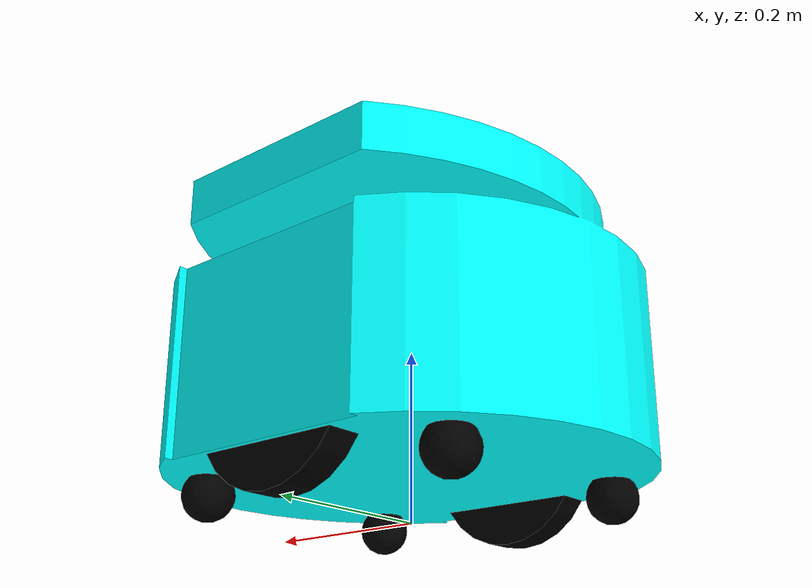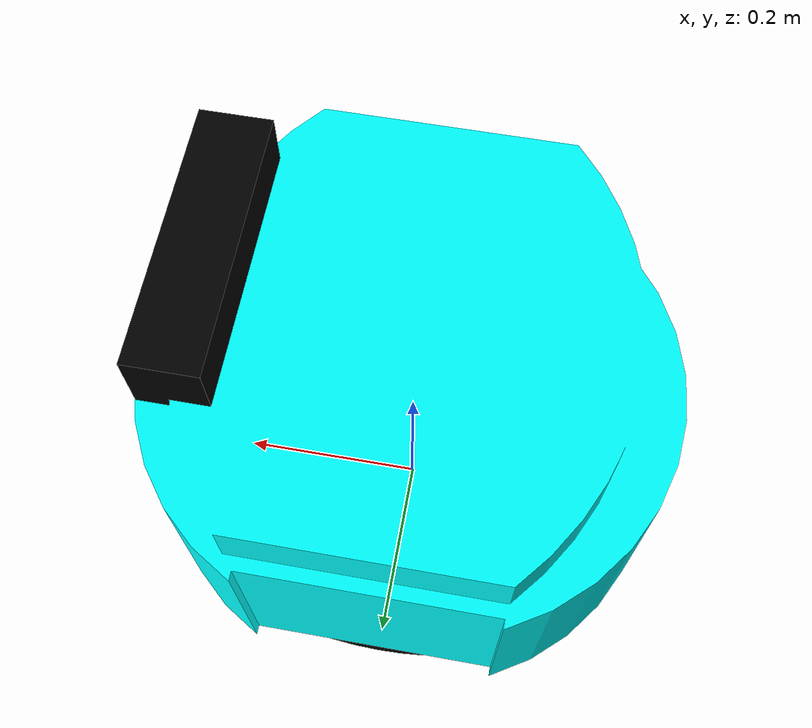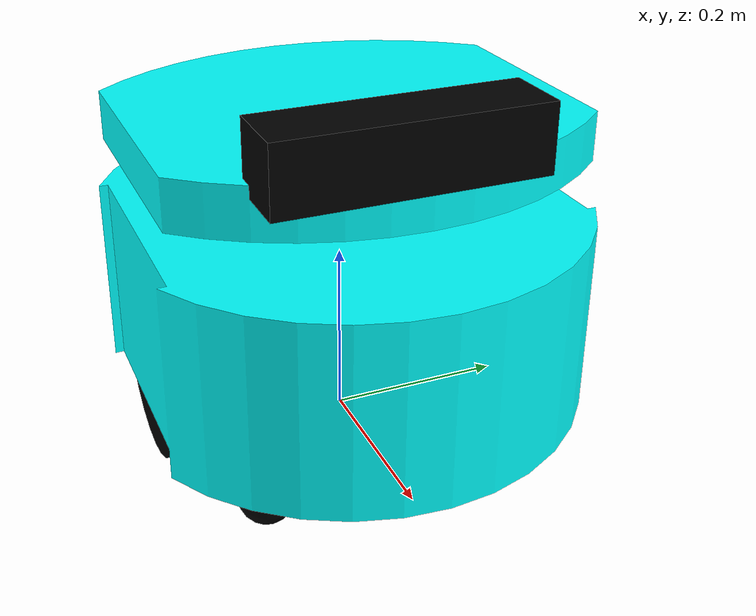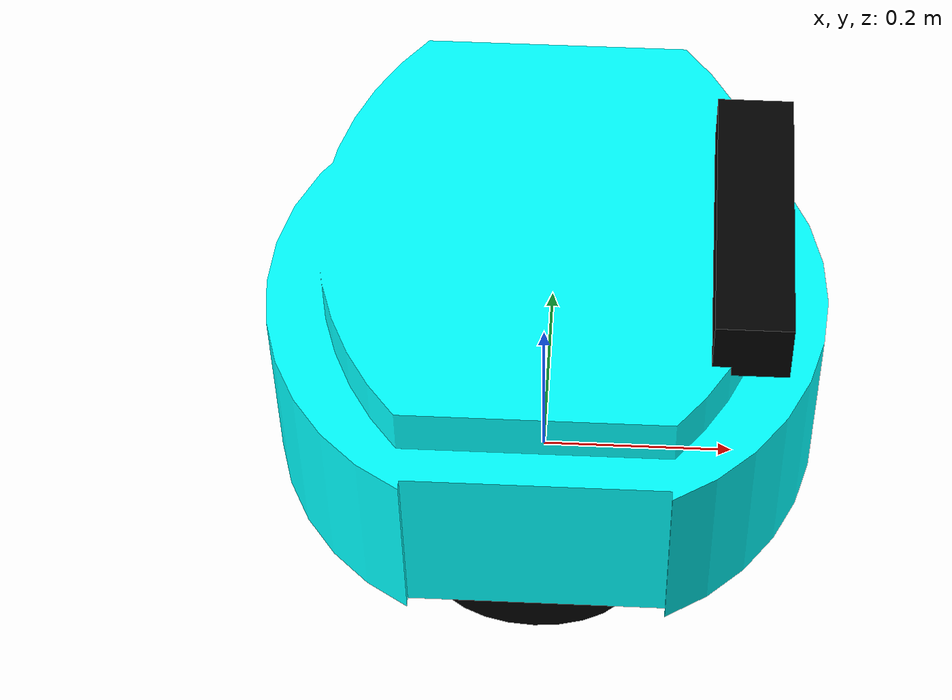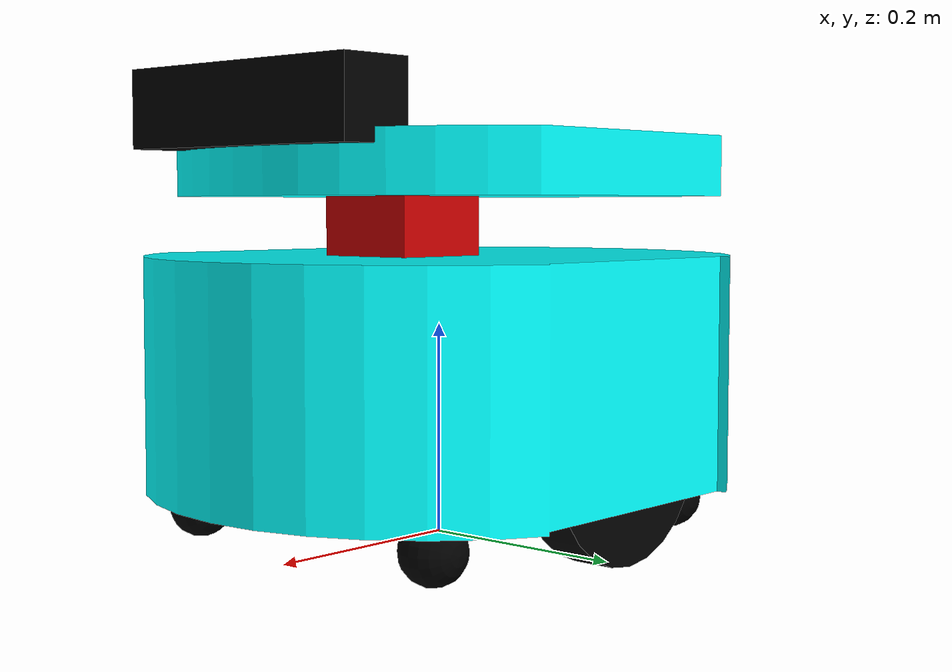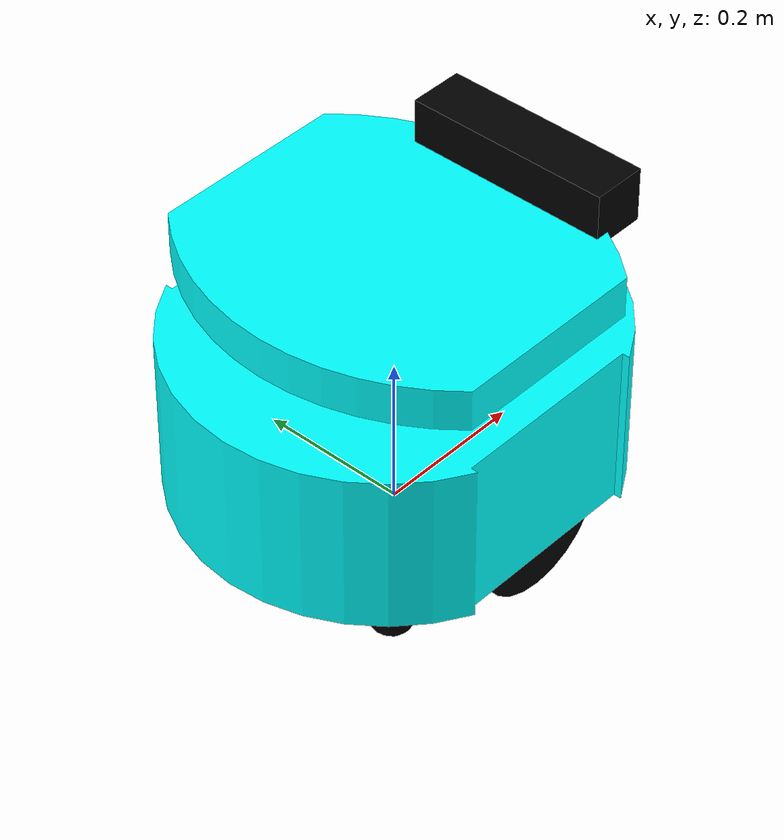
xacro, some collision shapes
<?xml version="1.0"?>
<robot name="awc" xmlns:xacro="http://www.ros.org/wiki/xacro">

<xacro:property name="lenght_base_link" value="0.72" />
<xacro:property name="width_base_link" value="0.47" />
<xacro:property name="height_base_link" value="0.40" />

<xacro:property name="width_seat" value="0.46" />
<xacro:property name="length_seat" value="0.43" />
<xacro:property name="height_seat" value="0.1" />

<xacro:property name="width_feed_support" value="0.25" />
<xacro:property name="length_feed_support" value="0.42" />
<xacro:property name="height_feed_support" value="0.05" />

<xacro:property name="width_wheel" value="0.04" />
<xacro:property name="radius_wheel" value="0.1" />

<xacro:property name="width_back_wheel" value="0.05" />
<xacro:property name="radius_back_wheel" value="0.03" />

<xacro:property name="radius_front_wheel" value="0.03" />

<xacro:property name="width_handle" value="0.31" />
<xacro:property name="length_handle" value="0.1" />
<xacro:property name="height_handle" value="0.04" />

<xacro:property name="width_rest" value="0.43" />
<xacro:property name="length_rest" value="0.37" />
<xacro:property name="height_rest" value="0.1" />

<xacro:property name="width_head" value="0.16" />
<xacro:property name="length_head" value="0.20" />
<xacro:property name="height_head" value="0.05" />

<xacro:property name="wheel_front_mass" value="5"/>

<xacro:property name="chassisMass" value="50"/>

<xacro:property name="PI" value="3.1415926535897931"/>

<xacro:property name="chassisHeight" value="0.1"/>
<xacro:property name="chassisLength" value="0.4"/>
<xacro:property name="chassisWidth" value="0.2"/>

<xacro:property name="casterRadius" value="0.05"/>
<xacro:property name="casterMass" value="5"/>

<xacro:property name="wheelWidth" value="0.05"/>
<xacro:property name="wheelRadius" value="0.1"/>
<xacro:property name="wheelPos" value="0.2"/>
<xacro:property name="wheelMass" value="5"/>

<xacro:property name="cameraSize" value="0.05"/>
<xacro:property name="cameraMass" value="0.1"/>

<xacro:include filename="$(find patbotsd_description)/urdf/patbot.gazebo" />
<xacro:include filename="$(find patbotsd_description)/urdf/materials.xacro" />
<xacro:include filename="$(find patbotsd_description)/urdf/macros.xacro" />

<!--xacro:include filename="$(find awc_description)/urdf/sensors/kinect.urdf.xacro"/-->
<xacro:include filename="$(find patbotsd_description)/urdf/sensors/asus_xtion_pro.urdf.xacro"/>

<!--Base_link -->
<link name="footprint">
    <visual>
        <origin xyz="0 0 0.05" rpy="0 0 0"/>
        <geometry>
            <mesh filename="package://patbotsd_description/meshes/patbot_structure.dae"/>
        </geometry>
        <material name="cyan"/>
    </visual>
    <collision>
        <origin xyz="0 0 0.05" rpy="0 0 0"/>
        <geometry>
             <mesh filename="package://patbotsd_description/meshes/patbot_structure.dae"/>
        </geometry>
    </collision>
    <inertial>
       <origin xyz="0 0 0.05" rpy="0 0 0"/>
       <mass value="${chassisMass}"/>
	   <box_inertia m="${chassisMass}" x="${chassisLength}" y="${chassisWidth}" z="${chassisHeight}"/>
    </inertial>
</link>

<link name="base_link" />

<joint name="base_joint" type="fixed">
  <parent link="base_link"/>
  <child link="footprint"/>
  <origin rpy="0 0 0" xyz="-0 0.0 0.0"/>
</joint>

<!-- front wheels -->
<wheel lr="right"  o_y="0.205"/>
<wheel lr="left"  o_y="-0.205"/>

<!-- kinect/asus -->
<!--sensor_kinect parent="seat"/-->
<sensor_asus_xtion_pro parent="footprint"/>

<!--right back wheel -->

  <link name="right_back_wheel">
    <visual>
      <origin rpy="0 0 0" xyz="0 0 0"/>
      <geometry>
        <sphere radius="${radius_back_wheel}"/>
      </geometry>
      <material name="black" />
    </visual>
    <collision>
        <origin rpy="0 0 0" xyz="0 0 0"/>
        <geometry>
             <sphere radius="${radius_back_wheel}"/>
        </geometry>
    </collision>
    <inertial>
       <origin rpy="0 0 0" xyz="0 0 0"/>
       <mass value="1"/>
       <inertia
	   ixx="1.0" ixy="0.0" ixz="0.0"
	   iyy="1.0" iyz="0.0"
	   izz="1.0"/>
    </inertial>
  </link>

<joint name="base_to_right_back_wheel" type="fixed">
    <parent link="footprint"/>
    <child link="right_back_wheel"/>
    <axis xyz="1 1 1"/>
    <origin rpy="1.57075 0 0" xyz="-0.17 -0.15 0.03"/>
  </joint>

<!--right front wheel -->

  <link name="right_front_wheel">
    <visual>
      <origin rpy="0 0 0" xyz="0 0 0"/>
      <geometry>
        <sphere radius="${radius_front_wheel}"/>
      </geometry>
      <material name="black" />
    </visual>
    <collision>
        <origin rpy="0 0 0" xyz="0 0 0"/>
        <geometry>
             <sphere radius="${radius_front_wheel}"/>
        </geometry>
    </collision>
    <inertial>
       <origin rpy="0 0 0" xyz="0 0 0"/>
       <mass value="1"/>
       <inertia
	   ixx="1.0" ixy="0.0" ixz="0.0"
	   iyy="1.0" iyz="0.0"
	   izz="1.0"/>
    </inertial>
  </link>

<joint name="base_to_right_front_wheel" type="fixed">
    <parent link="footprint"/>
    <child link="right_front_wheel"/>
    <axis xyz="1 1 1"/>
    <origin rpy="1.57075 0 0" xyz="0.17 -0.15 0.03"/>
  </joint>

<!--left back wheel -->

  <link name="left_back_wheel">
    <visual>
      <origin rpy="0 0 0" xyz="0 0 0"/>
      <geometry>
        <sphere radius="${radius_back_wheel}"/>
      </geometry>
      <material name="black" />
    </visual>
    <collision>
        <origin rpy="0 0 0" xyz="0 0 0"/>
        <geometry>
             <sphere radius="${radius_back_wheel}"/>
        </geometry>
    </collision>
    <inertial>
       <origin rpy="0 0 0" xyz="0 0 0"/>
       <mass value="1"/>
       <inertia
	   ixx="1.0" ixy="0.0" ixz="0.0"
	   iyy="1.0" iyz="0.0"
	   izz="1.0"/>
    </inertial>
  </link>

  <joint name="base_to_left_back_wheel" type="fixed">
    <parent link="footprint"/>
    <child link="left_back_wheel"/>
    <axis xyz="1 1 1"/>
    <origin rpy="1.57075 0 0" xyz="-0.17 0.15 0.03"/>
  </joint>

<!--left front wheel -->

  <link name="left_front_wheel">
    <visual>
      <origin rpy="0 0 0" xyz="0 0 0"/>
      <geometry>
        <sphere radius="${radius_front_wheel}"/>
      </geometry>
      <material name="black" />
    </visual>
    <collision>
        <origin rpy="0 0 0" xyz="0 0 0"/>
        <geometry>
             <sphere radius="${radius_front_wheel}"/>
        </geometry>
    </collision>
    <inertial>
       <origin rpy="0 0 0" xyz="0 0 0"/>
       <mass value="1"/>
       <inertia
	   ixx="1.0" ixy="0.0" ixz="0.0"
	   iyy="1.0" iyz="0.0"
	   izz="1.0"/>
    </inertial>
  </link>

<joint name="base_to_left_front_wheel" type="fixed">
    <parent link="footprint"/>
    <child link="left_front_wheel"/>
    <axis xyz="1 1 1"/>
    <origin rpy="1.57075 0 0" xyz="0.17 0.15 0.03"/>
  </joint>

<!-- Hokuyo Laser -->
  <link name="laser">
    <visual>
      <origin xyz="0 0 0" rpy="0 0 0"/>
      <geometry>
        <mesh filename="package://patbotsd_description/meshes/hokuyo.dae"/>
      </geometry>
    <material name="red" />
    </visual>
    <collision>
      <origin xyz="0 0 0" rpy="0 0 0"/>
      <geometry>
    <box size="0.1 0.1 0.1"/>
      </geometry>
    </collision>
    <inertial>
      <mass value="1e-5" />
      <origin xyz="0 0 0" rpy="0 0 0"/>
      <inertia ixx="1e-6" ixy="0" ixz="0" iyy="1e-6" iyz="0" izz="1e-6" />
    </inertial>
  </link>

<joint name="hokuyo_joint" type="fixed">
    <axis xyz="0 1 0" />
    <origin xyz="0.05 0 0.30" rpy="3.1416 0 0"/>
    <parent link="footprint"/>
    <child link="laser"/>
  </joint>

</robot>

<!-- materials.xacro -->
<robot>

  <material name="black">
    <color rgba="0.0 0.0 0.0 1.0"/>
  </material>

  <material name="blue">
    <color rgba="0.0 0.0 0.8 1.0"/>
  </material>

  <material name="green">
    <color rgba="0.0 0.8 0.0 1.0"/>
  </material>

  <material name="grey">
    <color rgba="0.2 0.2 0.2 1.0"/>
  </material>

  <material name="cyan">
    <color rgba="0 1.0 1.0 1.0"/>
  </material>

  <material name="orange">
    <color rgba="${255/255} ${108/255} ${10/255} 1.0"/>
  </material>

  <material name="brown">
    <color rgba="${222/255} ${207/255} ${195/255} 1.0"/>
  </material>

  <material name="red">
    <color rgba="0.8 0.0 0.0 1.0"/>
  </material>

  <material name="white">
    <color rgba="1.0 1.0 1.0 1.0"/>
  </material>

</robot>

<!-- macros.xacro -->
<robot>
<macro name="cylinder_inertia" params="m r h">
  <inertia  ixx="${m*(3*r*r+h*h)/12}" ixy = "0" ixz = "0"
    iyy="${m*(3*r*r+h*h)/12}" iyz = "0"
    izz="${m*r*r/2}"
  />
</macro>

<macro name="box_inertia" params="m x y z">
  <inertia  ixx="${m*(y*y+z*z)/12}" ixy = "0" ixz = "0"
    iyy="${m*(x*x+z*z)/12}" iyz = "0"
    izz="${m*(x*x+z*z)/12}"
  />
</macro>

<macro name="sphere_inertia" params="m r">
  <inertia  ixx="${2*m*r*r/5}" ixy = "0" ixz = "0"
    iyy="${2*m*r*r/5}" iyz = "0"
    izz="${2*m*r*r/5}"
  />
</macro>

<macro name="wheel" params="lr o_y">

<link name="${lr}_wheel">
  <collision>
    <origin xyz="0 0 0" rpy="0 ${PI/2} ${PI/2}" />
    <geometry>
      <cylinder length="${width_wheel}" radius="${radius_wheel}"/>
    </geometry>
  </collision>

  <visual>
    <origin xyz="0 0 0" rpy="0 ${PI/2} ${PI/2}" />
    <geometry>
      <cylinder length="${width_wheel}" radius="${radius_wheel}"/>
    </geometry>
    <material name="black"/>
  </visual>

  <inertial>
    <origin xyz="0 0 0" rpy="0 ${PI/2} ${PI/2}" />
    <mass value="${wheelMass}"/>
    <cylinder_inertia m="${wheelMass}" r="${wheelRadius}" h="${wheelWidth}"/>
  </inertial>
</link>

<gazebo reference="${lr}_wheel">
  <mu1 value="1.0"/>
  <mu2 value="1.0"/>
  <kp  value="10000000.0" />
  <kd  value="1.0" />
  <fdir1 value="1 0 0"/>
  <material>Gazebo/Black</material>
</gazebo>

<joint name="${lr}_wheel_hinge" type="continuous">
  <parent link="footprint"/>
  <child link="${lr}_wheel"/>
  <origin rpy="0 1.57075 0" xyz="0 ${o_y} 0.1" />
  <axis xyz="0 1 0" rpy="0 0 0" />
  <limit effort="100" velocity="100"/>
  <joint_properties damping="0.0" friction="0.0"/>
</joint>

<transmission name="${lr}_trans">
    <type>transmission_interface/SimpleTransmission</type>
    <joint name="${lr}_wheel_hinge">
      <hardwareInterface>EffortJointInterface</hardwareInterface>
    </joint>
    <actuator name="${lr}Motor">
      <hardwareInterface>EffortJointInterface</hardwareInterface>
      <mechanicalReduction>10</mechanicalReduction>
    </actuator>
  </transmission>

</macro>

</robot>

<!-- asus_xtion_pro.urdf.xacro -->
<robot name="sensor_asus_xtion_pro" xmlns:xacro="http://ros.org/wiki/xacro">
  <!--xacro:include filename="$(find turtlebot_description)/urdf/turtlebot_gazebo.urdf.xacro"/-->
  <!--xacro:include filename="$(find turtlebot_description)/urdf/turtlebot_properties.urdf.xacro"/-->

<xacro:include filename="$(find patbotsd_description)/urdf/asus_kinect__gazebo.urdf.xacro"/>
<xacro:include filename="$(find patbotsd_description)/urdf/asus_kinect_properties.urdf.xacro"/>

  <!-- Xacro properties -->
  <xacro:property name="M_SCALE" value="0.001"/>
  <xacro:property name="asus_xtion_pro_depth_rel_rgb_py" value="0.0270" />
  <xacro:property name="asus_xtion_pro_cam_rel_rgb_py"   value="-0.0220" />

  <!-- Parameterised in part by the values in turtlebot_properties.urdf.xacro -->
  <xacro:macro name="sensor_asus_xtion_pro" params="parent">

    <joint name="camera_rgb_joint" type="fixed">
      <origin xyz="${cam_px} ${cam_py} ${cam_pz}"
              rpy="${cam_or} ${cam_op} ${cam_oy}"/>
      <parent link="${parent}"/>
      <child link="camera_rgb_frame" />
    </joint>

    <link name="camera_rgb_frame">
      <inertial>
        <mass value="0.001" />
        <origin xyz="0 0 0" />
        <inertia ixx="0.0001" ixy="0.0" ixz="0.0"
          iyy="0.0001" iyz="0.0"
          izz="0.0001" />
      </inertial>
    </link>

    <joint name="camera_rgb_optical_joint" type="fixed">
      <origin xyz="0 0 0" rpy="${-PI/2} 0 ${-PI/2}" />
      <parent link="camera_rgb_frame" />
      <child link="camera_rgb_optical_frame" />
    </joint>

    <link name="camera_rgb_optical_frame">
      <inertial>
        <mass value="0.001" />
        <origin xyz="0 0 0" />
        <inertia ixx="0.0001" ixy="0.0" ixz="0.0"
          iyy="0.0001" iyz="0.0"
          izz="0.0001" />
      </inertial>
    </link>

    <joint name="camera_joint" type="fixed">
      <origin xyz="0 ${asus_xtion_pro_cam_rel_rgb_py} 0"
              rpy="0 0 0"/>
      <parent link="camera_rgb_frame"/>
      <child link="camera_link"/>
    </joint>

    <link name="camera_link">
      <visual>
        <origin xyz="0.01 0 0" rpy="${-PI/2} -${PI} ${-PI/2}"/>
        <geometry>
          <mesh filename="package://turtlebot_description/meshes/sensors/asus_xtion_pro_live.dae" scale="${M_SCALE} ${M_SCALE} ${M_SCALE}"/>
        </geometry>
        <material name="black" />
      </visual>
      <collision>
        <origin xyz="0.0 0.0 0.0" rpy="0 0 0" />
        <geometry>
        <box size="0.0730 .2760 0.0720"/>
      </geometry>
      </collision>
      <inertial>
        <mass value="0.01" />
        <origin xyz="0 0 0" />
        <inertia ixx="0.001" ixy="0.0" ixz="0.0"
          iyy="0.001" iyz="0.0"
          izz="0.001" />
      </inertial>
    </link>

    <joint name="camera_depth_joint" type="fixed">
      <origin xyz="0 ${asus_xtion_pro_depth_rel_rgb_py} 0" rpy="0 0 0" />
      <parent link="camera_rgb_frame" />
      <child link="camera_depth_frame" />
    </joint>

    <link name="camera_depth_frame">
      <inertial>
        <mass value="0.01" />
        <origin xyz="0 0 0" />
        <inertia ixx="0.001" ixy="0.0" ixz="0.0"
          iyy="0.001" iyz="0.0"
          izz="0.001" />
      </inertial>
    </link>

    <joint name="camera_depth_optical_joint" type="fixed">
      <origin xyz="0 0 0" rpy="${-PI/2} 0 ${-PI/2}" />
      <parent link="camera_depth_frame" />
      <child link="camera_depth_optical_frame" />
    </joint>

    <link name="camera_depth_optical_frame">
      <inertial>
        <mass value="0.001" />
        <origin xyz="0 0 0" />
        <inertia ixx="0.0001" ixy="0.0" ixz="0.0"
          iyy="0.0001" iyz="0.0"
          izz="0.0001" />
      </inertial>
    </link>

  <!-- RGBD sensor for simulation, same as Kinect -->
  <turtlebot_sim_3dsensor/>
  </xacro:macro>
</robot>

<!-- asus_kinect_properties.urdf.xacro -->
<robot>
  <!--
    These properties must be observed by any machine
    that wants to be defined as a turtlebot. Refer
    to the REP for more details.

    http://www.ros.org/reps/rep-0119.html
   -->

	<property name="cam_px" value="0.20" />
        <!--property name="cam_px" value="0.37" /-->
	<property name="cam_py" value="0 " />
	<property name="cam_pz" value="0.40" />
        <!--property name="cam_pz" value="0.68" /-->
	<property name="cam_or" value="0" />
	<property name="cam_op" value="0" />
	<property name="cam_oy" value="0" />
</robot>
